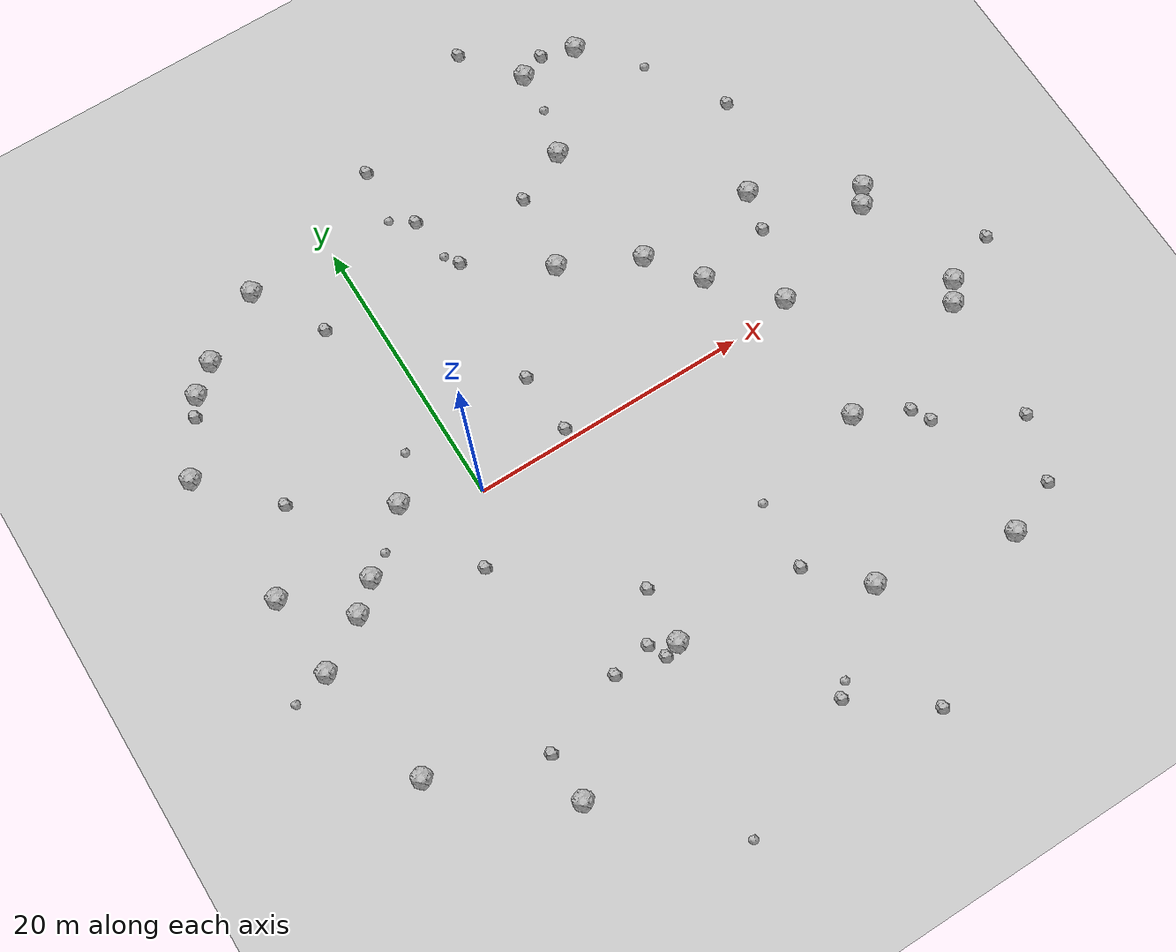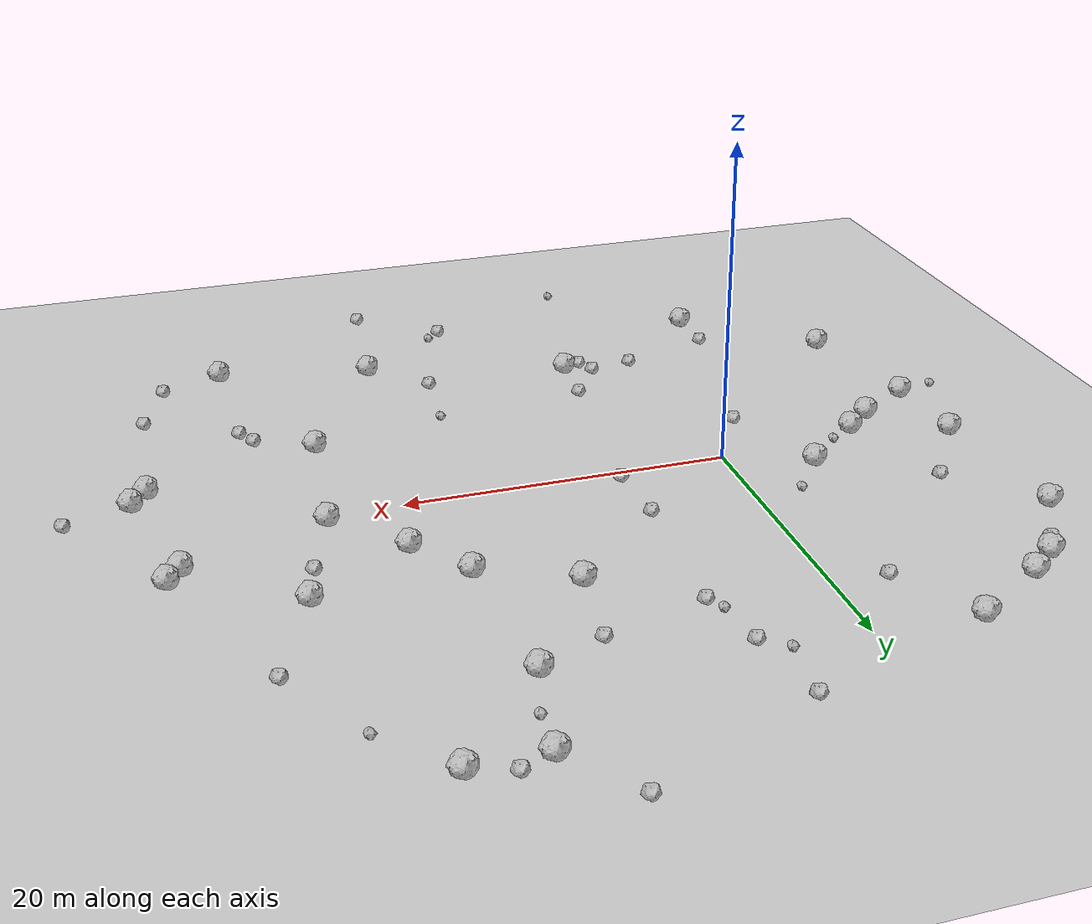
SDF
<sdf version="1.6">
 <world name="default">
  <include><uri>model://custom_ground</uri></include>
  <include><uri>model://sun</uri></include>
  <model name="rock1_0_0">
   <include><uri>model://rock1</uri><pose>-14.686883426534012 -5.121974331103381 0.5 0 0 0</pose></include>
  </model>
  <model name="rock1_0_1">
   <include><uri>model://rock1</uri><pose>18.44845788957044 24.84668019267062 0.5 0 0 0</pose></include>
  </model>
  <model name="rock1_0_2">
   <include><uri>model://rock1</uri><pose>22.723424589320345 24.84637767913226 0.5 0 0 0</pose></include>
  </model>
  <model name="rock1_0_3">
   <include><uri>model://rock1</uri><pose>18.385049536303285 -19.107027850705848 0.5 0 0 0</pose></include>
  </model>
  <model name="rock1_0_4">
   <include><uri>model://rock1</uri><pose>17.272927994177927 18.36429307804333 0.5 0 0 0</pose></include>
  </model>
  <model name="rock1_0_5">
   <include><uri>model://rock1</uri><pose>-12.898688267379745 -14.145573782720671 0.5 0 0 0</pose></include>
  </model>
  <model name="rock1_0_6">
   <include><uri>model://rock1</uri><pose>-10.859237089589636 17.574881942685394 0.5 0 0 0</pose></include>
  </model>
  <model name="rock1_0_7">
   <include><uri>model://rock1</uri><pose>-15.03161296842328 0.8191722254070122 0.5 0 0 0</pose></include>
  </model>
  <model name="rock1_0_8">
   <include><uri>model://rock1</uri><pose>12.646022537128836 11.09886134488469 0.5 0 0 0</pose></include>
  </model>
  <model name="rock1_0_9">
   <include><uri>model://rock1</uri><pose>23.723923990069487 -8.74464318667 0.5 0 0 0</pose></include>
  </model>
  <model name="rock1_0_10">
   <include><uri>model://rock1</uri><pose>-5.101441281046199 2.13738775532876 0.5 0 0 0</pose></include>
  </model>
  <model name="rock1_0_11">
   <include><uri>model://rock1</uri><pose>35.18490294055325 -4.400485530145023 0.5 0 0 0</pose></include>
  </model>
  <model name="rock1_0_12">
   <include><uri>model://rock1</uri><pose>34.188653660722046 -5.780355763638717 0.5 0 0 0</pose></include>
  </model>
  <model name="rock1_0_13">
   <include><uri>model://rock1</uri><pose>-9.15719178882611 -1.2442446593879524 0.5 0 0 0</pose></include>
  </model>
  <model name="rock1_0_14">
   <include><uri>model://rock1</uri><pose>5.428878922380235 -15.47611442327543 0.5 0 0 0</pose></include>
  </model>
  <model name="rock1_0_15">
   <include><uri>model://rock1</uri><pose>-12.807998798065247 15.963616218680102 0.5 0 0 0</pose></include>
  </model>
  <model name="rock1_0_16">
   <include><uri>model://rock1</uri><pose>28.1850645234086 -21.132892203986636 0.5 0 0 0</pose></include>
  </model>
  <model name="rock1_0_17">
   <include><uri>model://rock1</uri><pose>-11.066175104655095 -2.916529130183939 0.5 0 0 0</pose></include>
  </model>
  <model name="rock1_0_18">
   <include><uri>model://rock1</uri><pose>-5.068766604341533 -20.76686238187666 0.5 0 0 0</pose></include>
  </model>
  <model name="rock1_0_19">
   <include><uri>model://rock1</uri><pose>-6.077845796764308 20.574099110362774 0.5 0 0 0</pose></include>
  </model>
  <model name="rock1_0_20">
   <include><uri>model://rock1</uri><pose>-15.92588920117229 10.94150954879921 0.5 0 0 0</pose></include>
  </model>
  <model name="rock1_0_21">
   <include><uri>model://rock1</uri><pose>24.6003340826353 0.5965040615621184 0.5 0 0 0</pose></include>
  </model>
  <model name="rock1_0_22">
   <include><uri>model://rock1</uri><pose>33.10200444926732 3.606881371013337 0.5 0 0 0</pose></include>
  </model>
  <model name="rock1_0_23">
   <include><uri>model://rock1</uri><pose>18.105913490016697 8.44322066084181 0.5 0 0 0</pose></include>
  </model>
  <model name="rock1_0_24">
   <include><uri>model://rock1</uri><pose>33.954363821512835 4.792691685019037 0.5 0 0 0</pose></include>
  </model>
  <model name="rock1_0_25">
   <include><uri>model://rock1</uri><pose>20.774628095186067 4.866943027170464 0.5 0 0 0</pose></include>
  </model>
  <model name="rock1_0_26">
   <include><uri>model://rock1</uri><pose>26.904278136704406 8.684197022874685 0.5 0 0 0</pose></include>
  </model>
  <model name="rock2_0_0">
   <include><uri>model://rock2</uri><pose>26.19517962265713 5.828740338992645 0.3 0 0 0</pose></include>
  </model>
  <model name="rock2_0_1">
   <include><uri>model://rock2</uri><pose>5.6432172480243565 -11.431154947310329 0.3 0 0 0</pose></include>
  </model>
  <model name="rock2_0_2">
   <include><uri>model://rock2</uri><pose>15.287951338342523 28.8885248344194 0.3 0 0 0</pose></include>
  </model>
  <model name="rock2_0_3">
   <include><uri>model://rock2</uri><pose>27.266350797047508 -10.51954474120938 0.3 0 0 0</pose></include>
  </model>
  <model name="rock2_0_4">
   <include><uri>model://rock2</uri><pose>-5.216559491771749 -17.17220581488955 0.3 0 0 0</pose></include>
  </model>
  <model name="rock2_0_5">
   <include><uri>model://rock2</uri><pose>33.62130662885479 -14.942941511420447 0.3 0 0 0</pose></include>
  </model>
  <model name="rock2_0_6">
   <include><uri>model://rock2</uri><pose>29.491076786187953 15.356774064070429 0.3 0 0 0</pose></include>
  </model>
  <model name="rock2_0_7">
   <include><uri>model://rock2</uri><pose>39.010365961599256 -2.9380396803981377 0.3 0 0 0</pose></include>
  </model>
  <model name="rock2_0_8">
   <include><uri>model://rock2</uri><pose>-13.671278480627729 14.712906354892787 0.3 0 0 0</pose></include>
  </model>
  <model name="rock2_0_9">
   <include><uri>model://rock2</uri><pose>-2.558507230102922 -4.573843722872663 0.3 0 0 0</pose></include>
  </model>
  <model name="rock2_0_10">
   <include><uri>model://rock2</uri><pose>13.321585502002023 16.667461000000742 0.3 0 0 0</pose></include>
  </model>
  <model name="rock2_0_11">
   <include><uri>model://rock2</uri><pose>-3.205818590250143 15.524840774423247 0.3 0 0 0</pose></include>
  </model>
  <model name="rock2_0_12">
   <include><uri>model://rock2</uri><pose>32.01234685284783 -19.529843209027263 0.3 0 0 0</pose></include>
  </model>
  <model name="rock2_0_13">
   <include><uri>model://rock2</uri><pose>6.613916861757268 5.254394460918441 0.3 0 0 0</pose></include>
  </model>
  <model name="rock2_0_14">
   <include><uri>model://rock2</uri><pose>6.897182801944876 0.7778265092698184 0.3 0 0 0</pose></include>
  </model>
  <model name="rock2_0_15">
   <include><uri>model://rock2</uri><pose>14.881382020410761 -15.551248275708332 0.3 0 0 0</pose></include>
  </model>
  <model name="rock2_0_16">
   <include><uri>model://rock2</uri><pose>4.269196748945635 -15.816424115246193 0.3 0 0 0</pose></include>
  </model>
  <model name="rock2_0_17">
   <include><uri>model://rock2</uri><pose>7.0997190529504834 14.902067081411637 0.3 0 0 0</pose></include>
  </model>
  <model name="rock2_0_18">
   <include><uri>model://rock2</uri><pose>3.678059647779399 -14.586959060967569 0.3 0 0 0</pose></include>
  </model>
  <model name="rock2_0_19">
   <include><uri>model://rock2</uri><pose>20.276778931449662 25.639583338924623 0.3 0 0 0</pose></include>
  </model>
  <model name="rock2_0_20">
   <include><uri>model://rock2</uri><pose>0.8458467397211002 -15.072764444184905 0.3 0 0 0</pose></include>
  </model>
  <model name="rock2_0_21">
   <include><uri>model://rock2</uri><pose>12.260475872649323 -24.092908413220705 0.3 0 0 0</pose></include>
  </model>
  <model name="rock2_0_22">
   <include><uri>model://rock2</uri><pose>6.080677228420676 19.174088784017464 0.3 0 0 0</pose></include>
  </model>
  <model name="rock2_0_23">
   <include><uri>model://rock2</uri><pose>27.98559321421935 -11.829514530653725 0.3 0 0 0</pose></include>
  </model>
  <model name="rock2_0_24">
   <include><uri>model://rock2</uri><pose>17.397577481205943 -28.00283076915495 0.3 0 0 0</pose></include>
  </model>
  <model name="rock2_0_25">
   <include><uri>model://rock2</uri><pose>-11.52228017078977 6.1297204114515225 0.3 0 0 0</pose></include>
  </model>
  <model name="rock2_0_26">
   <include><uri>model://rock2</uri><pose>5.075450308498912 24.305940433753378 0.3 0 0 0</pose></include>
  </model>
  <model name="rock3_0_0">
   <include><uri>model://rock3</uri><pose>18.18725993649322 21.811939968821136 0.2 0 0 0</pose></include>
  </model>
  <model name="rock3_0_1">
   <include><uri>model://rock3</uri><pose>4.530480587117491 20.228970711086568 0.2 0 0 0</pose></include>
  </model>
  <model name="rock3_0_2">
   <include><uri>model://rock3</uri><pose>2.6205557790576215 -28.468492149981472 0.2 0 0 0</pose></include>
  </model>
  <model name="rock3_0_3">
   <include><uri>model://rock3</uri><pose>15.220146482534545 -10.676021506731018 0.2 0 0 0</pose></include>
  </model>
  <model name="rock3_0_4">
   <include><uri>model://rock3</uri><pose>-17.39105779597183 -5.837277256333195 0.2 0 0 0</pose></include>
  </model>
  <model name="rock3_0_5">
   <include><uri>model://rock3</uri><pose>-7.582317349411625 -0.232962474257274 0.2 0 0 0</pose></include>
  </model>
  <model name="rock3_0_6">
   <include><uri>model://rock3</uri><pose>13.103556903544664 -23.298954739088654 0.2 0 0 0</pose></include>
  </model>
  <model name="rock3_0_7">
   <include><uri>model://rock3</uri><pose>33.726139004685166 4.257296067754311 0.2 0 0 0</pose></include>
  </model>
  <model name="rock3_0_8">
   <include><uri>model://rock3</uri><pose>26.11473723362176 20.932834789684968 0.2 0 0 0</pose></include>
  </model>
  <model name="rock3_0_9">
   <include><uri>model://rock3</uri><pose>-3.0082891230609796 5.002453646325783 0.2 0 0 0</pose></include>
  </model>
  <model name="rock3_0_10">
   <include><uri>model://rock3</uri><pose>6.427068403908333 15.853623360443443 0.2 0 0 0</pose></include>
  </model>
 </world>
</sdf>
